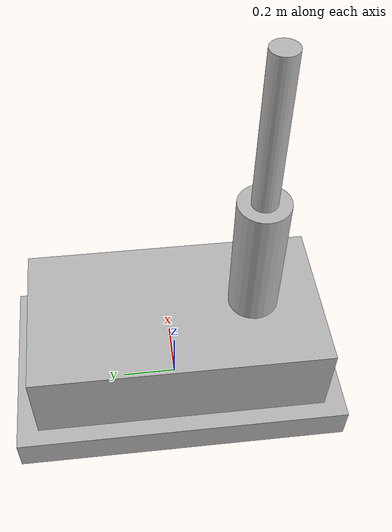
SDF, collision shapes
<?xml version="1.0" ?>
<sdf version="1.6">
  <model name="warehouse_robot">
    <static>false</static>
    <link name="link">
      <kinematic>1</kinematic>
      <inertial>
        <pose>0 0 0.15 0 0 0</pose>
        <mass>50.0</mass>
        <inertia>
          <ixx>4.525499333333333</ixx>
          <ixy>0</ixy>
          <ixz>0</ixz>
          <iyy>1.4504741933333334</iyy>
          <iyz>0</iyz>
          <izz>5.6426401933333326</izz>
        </inertia>
      </inertial>
      <visual name="visual">
        <geometry>
          <mesh>
            <uri>model://warehouse_robot_ariac/meshes/robot.dae</uri>
          </mesh>
        </geometry>
      </visual>
      <collision name="collision_base">
        <max_contacts>10</max_contacts>
        <pose>0 0 0.20437 0 0 0</pose>
          <surface>
          <contact>
            <ode>
              <max_vel>0.0</max_vel>
              <min_depth>0.001</min_depth>
            </ode>
          </contact>
          </surface>
        <geometry>
          <box>
            <size>0.55508 1.0228 0.40874</size>
          </box>
        </geometry>
      </collision>
      <collision name="collision_bumper">
        <max_contacts>10</max_contacts>
        <pose>0 0 0.062205 0 0 0</pose>
        <geometry>
          <box>
            <size>0.67266 1.17126 0.12441</size>
          </box>
        </geometry>
          <surface>
          <contact>
            <ode>
              <max_vel>0.0</max_vel>
              <min_depth>0.001</min_depth>
            </ode>
          </contact>
          </surface>
      </collision>
      <collision name="collision_column_large">
        <pose>0 -0.27539 0.43738 0 0 0</pose>
        <geometry>
          <cylinder>
            <radius>0.08652</radius>
            <length>0.87476</length>
          </cylinder>
        </geometry>
          <surface>
          <contact>
            <ode>
              <max_vel>0.0</max_vel>
              <min_depth>0.001</min_depth>
            </ode>
          </contact>
          </surface>
      </collision>
      <collision name="collision_column_small">
        <pose>0 -0.27539 0.70424 0 0 0</pose>
        <geometry>
          <cylinder>
            <radius>0.04261</radius>
            <length>1.40848</length>
          </cylinder>
        </geometry>
          <surface>
          <contact>
            <ode>
              <max_vel>0.0</max_vel>
              <min_depth>0.001</min_depth>
            </ode>
          </contact>
          </surface>
      </collision>
    </link>
  </model>
</sdf>
